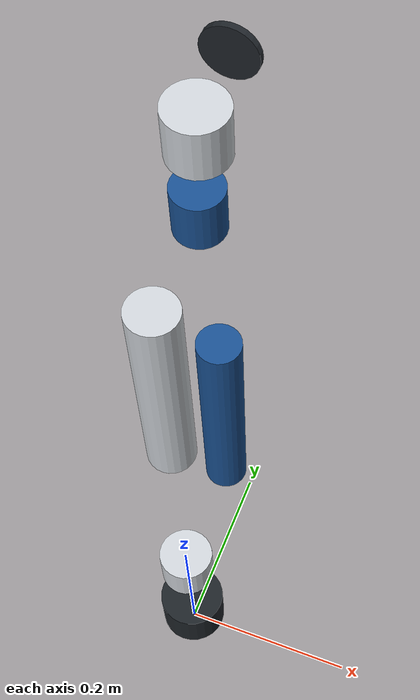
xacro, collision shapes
<?xml version="1.0"?>
<robot xmlns:xacro="http://www.ros.org/wiki/xacro" name="mycobot_pro600">
  <xacro:arg name="use_ros2_control" default="true"/>
  <xacro:arg name="controllers_file" default=""/>
  <xacro:arg name="use_gazebo_meshes" default="false"/>
  <xacro:arg name="fixed_base" default="true"/>

  <material name="pro600_dark">
    <color rgba="0.12 0.14 0.16 1"/>
  </material>
  <material name="pro600_white">
    <color rgba="0.82 0.84 0.86 1"/>
  </material>
  <material name="pro600_blue">
    <color rgba="0.10 0.32 0.58 1"/>
  </material>

  <xacro:if value="$(arg fixed_base)">
    <link name="world"/>
    <joint name="world_to_base" type="fixed">
      <parent link="world"/>
      <child link="base"/>
      <origin xyz="0 0 0" rpy="0 0 0"/>
    </joint>
  </xacro:if>

  <link name="base">
    <visual>
      <geometry>
        <xacro:if value="$(arg use_gazebo_meshes)">
          <mesh filename="package://mycobot_pro600_description/meshes/gazebo/base.stl"/>
        </xacro:if>
        <xacro:unless value="$(arg use_gazebo_meshes)">
          <mesh filename="package://mycobot_pro600_description/vendor_ros1/mycobot_description/urdf/mycobot_pro_600/base.dae"/>
        </xacro:unless>
      </geometry>
      <material name="pro600_dark"/>
      <origin xyz="0 0 0" rpy="0 0 0"/>
    </visual>
    <collision>
      <origin xyz="0 0 0.04" rpy="0 0 1.5708"/>
      <geometry>
        <cylinder length="0.06" radius="0.038"/>
      </geometry>
    </collision>
    <inertial>
      <mass value="0.1"/>
      <origin xyz="0 0 0" rpy="0 0 0"/>
      <inertia ixx="0.03" iyy="0.03" izz="0.03" ixy="0.0" ixz="0.0" iyz="0.0"/>
    </inertial>
  </link>

  <link name="link1">
    <visual>
      <geometry>
        <xacro:if value="$(arg use_gazebo_meshes)">
          <mesh filename="package://mycobot_pro600_description/meshes/gazebo/link1.stl"/>
        </xacro:if>
        <xacro:unless value="$(arg use_gazebo_meshes)">
          <mesh filename="package://mycobot_pro600_description/vendor_ros1/mycobot_description/urdf/mycobot_pro_600/link1.dae"/>
        </xacro:unless>
      </geometry>
      <material name="pro600_white"/>
      <origin xyz="0 0 0" rpy="0 0 3.1415926"/>
    </visual>
    <collision>
      <origin xyz="0.0 0.0 -0.02" rpy="0 0 1.5708"/>
      <geometry>
        <cylinder length="0.05" radius="0.03"/>
      </geometry>
    </collision>
    <inertial>
      <mass value="0.1"/>
      <origin xyz="0 0 0" rpy="0 0 0"/>
      <inertia ixx="0.03" iyy="0.03" izz="0.03" ixy="0.0" ixz="0.0" iyz="0.0"/>
    </inertial>
  </link>

  <link name="link2">
    <visual>
      <geometry>
        <xacro:if value="$(arg use_gazebo_meshes)">
          <mesh filename="package://mycobot_pro600_description/meshes/gazebo/link2.stl"/>
        </xacro:if>
        <xacro:unless value="$(arg use_gazebo_meshes)">
          <mesh filename="package://mycobot_pro600_description/vendor_ros1/mycobot_description/urdf/mycobot_pro_600/link2.dae"/>
        </xacro:unless>
      </geometry>
      <material name="pro600_blue"/>
      <origin xyz="0 0 -0.080" rpy="3.1415926 0 3.1415926"/>
    </visual>
    <collision>
      <origin xyz="0.128 0 -0.125" rpy="0 1.5708 0"/>
      <geometry>
        <cylinder length="0.28" radius="0.024"/>
      </geometry>
    </collision>
    <inertial>
      <mass value="0.1"/>
      <origin xyz="0 0 0" rpy="0 0 0"/>
      <inertia ixx="0.03" iyy="0.03" izz="0.03" ixy="0.0" ixz="0.0" iyz="0.0"/>
    </inertial>
  </link>

  <link name="link3">
    <visual>
      <geometry>
        <xacro:if value="$(arg use_gazebo_meshes)">
          <mesh filename="package://mycobot_pro600_description/meshes/gazebo/link3.stl"/>
        </xacro:if>
        <xacro:unless value="$(arg use_gazebo_meshes)">
          <mesh filename="package://mycobot_pro600_description/vendor_ros1/mycobot_description/urdf/mycobot_pro_600/link3.dae"/>
        </xacro:unless>
      </geometry>
      <material name="pro600_white"/>
      <origin xyz="0 0 -0.0855" rpy="3.1415926 0 3.1415926"/>
    </visual>
    <collision>
      <origin xyz="0.128 0.0 -0.003" rpy="0 1.5708 0"/>
      <geometry>
        <cylinder length="0.24" radius="0.024"/>
      </geometry>
    </collision>
    <inertial>
      <mass value="0.1"/>
      <origin xyz="0 0 0" rpy="0 0 0"/>
      <inertia ixx="0.03" iyy="0.03" izz="0.03" ixy="0.0" ixz="0.0" iyz="0.0"/>
    </inertial>
  </link>

  <link name="link4">
    <visual>
      <geometry>
        <xacro:if value="$(arg use_gazebo_meshes)">
          <mesh filename="package://mycobot_pro600_description/meshes/gazebo/link4.stl"/>
        </xacro:if>
        <xacro:unless value="$(arg use_gazebo_meshes)">
          <mesh filename="package://mycobot_pro600_description/vendor_ros1/mycobot_description/urdf/mycobot_pro_600/link4.dae"/>
        </xacro:unless>
      </geometry>
      <material name="pro600_blue"/>
      <origin xyz="0 0 0" rpy="0 3.1415926 0"/>
    </visual>
    <collision>
      <origin xyz="0.0 -0.01 0.007" rpy="1.5708 1.5708 0"/>
      <geometry>
        <cylinder length="0.05" radius="0.024"/>
      </geometry>
    </collision>
    <inertial>
      <mass value="0.1"/>
      <origin xyz="0 0 0" rpy="0 0 0"/>
      <inertia ixx="0.03" iyy="0.03" izz="0.03" ixy="0.0" ixz="0.0" iyz="0.0"/>
    </inertial>
  </link>

  <link name="link5">
    <visual>
      <geometry>
        <xacro:if value="$(arg use_gazebo_meshes)">
          <mesh filename="package://mycobot_pro600_description/meshes/gazebo/link5.stl"/>
        </xacro:if>
        <xacro:unless value="$(arg use_gazebo_meshes)">
          <mesh filename="package://mycobot_pro600_description/vendor_ros1/mycobot_description/urdf/mycobot_pro_600/link5.dae"/>
        </xacro:unless>
      </geometry>
      <material name="pro600_white"/>
      <origin xyz="0 0 0" rpy="0 0 1.5707"/>
    </visual>
    <collision>
      <origin xyz="0.0 0.0 -0.015" rpy="0 0 -1.5708"/>
      <geometry>
        <cylinder length="0.05" radius="0.028"/>
      </geometry>
    </collision>
    <inertial>
      <mass value="0.1"/>
      <origin xyz="0 0 0" rpy="0 0 0"/>
      <inertia ixx="0.03" iyy="0.03" izz="0.03" ixy="0.0" ixz="0.0" iyz="0.0"/>
    </inertial>
  </link>

  <link name="link6">
    <visual>
      <geometry>
        <xacro:if value="$(arg use_gazebo_meshes)">
          <mesh filename="package://mycobot_pro600_description/meshes/gazebo/link6.stl"/>
        </xacro:if>
        <xacro:unless value="$(arg use_gazebo_meshes)">
          <mesh filename="package://mycobot_pro600_description/vendor_ros1/mycobot_description/urdf/mycobot_pro_600/link6.dae"/>
        </xacro:unless>
      </geometry>
      <material name="pro600_dark"/>
      <origin xyz="0.03 0 0" rpy="0 -1.5707 0"/>
    </visual>
    <collision>
      <origin xyz="0.006 0.0 -0.0" rpy="0 1.5708 0"/>
      <geometry>
        <cylinder length="0.006" radius="0.026"/>
      </geometry>
    </collision>
    <inertial>
      <mass value="0.1"/>
      <origin xyz="0 0 0" rpy="0 0 0"/>
      <inertia ixx="0.03" iyy="0.03" izz="0.03" ixy="0.0" ixz="0.0" iyz="0.0"/>
    </inertial>
  </link>

  <joint name="joint2_to_joint1" type="revolute">
    <axis xyz="0 0 1"/>
    <limit effort="1000.0" lower="-3.14" upper="3.14159" velocity="2.0"/>
    <parent link="base"/>
    <child link="link1"/>
    <origin xyz="0 0 0.19934" rpy="0 0 0"/>
  </joint>

  <joint name="joint3_to_joint2" type="revolute">
    <axis xyz="0 0 -1"/>
    <limit effort="1000.0" lower="-3.14159" upper="3.14159" velocity="2.0"/>
    <parent link="link1"/>
    <child link="link2"/>
    <origin xyz="0 0 0" rpy="1.5708 -1.5708 0"/>
  </joint>

  <joint name="joint4_to_joint3" type="revolute">
    <axis xyz="0 0 -1"/>
    <limit effort="1000.0" lower="-2.61" upper="2.618" velocity="2.0"/>
    <parent link="link2"/>
    <child link="link3"/>
    <origin xyz="0.25 0 0" rpy="0 0 0"/>
  </joint>

  <joint name="joint5_to_joint4" type="revolute">
    <axis xyz="0 0 -1"/>
    <limit effort="1000.0" lower="-2.9670" upper="2.9670" velocity="2.0"/>
    <parent link="link3"/>
    <child link="link4"/>
    <origin xyz="0.25 0 -0.1091" rpy="0 0 1.5708"/>
  </joint>

  <joint name="joint6_to_joint5" type="revolute">
    <axis xyz="0 0 1"/>
    <limit effort="1000.0" lower="-2.93" upper="2.9321" velocity="2.0"/>
    <parent link="link4"/>
    <child link="link5"/>
    <origin xyz="0 -0.108 0" rpy="1.57080 -1.57080 0"/>
  </joint>

  <joint name="joint6output_to_joint6" type="revolute">
    <axis xyz="-1 0 0"/>
    <limit effort="1000.0" lower="-3.03" upper="3.0368" velocity="2.0"/>
    <parent link="link5"/>
    <child link="link6"/>
    <origin xyz="-0.07586 0 0" rpy="-1.57080 0 0"/>
  </joint>

  <xacro:if value="$(arg use_ros2_control)">
    <ros2_control name="GazeboSimSystem" type="system">
      <hardware>
        <plugin>gz_ros2_control/GazeboSimSystem</plugin>
      </hardware>
      <joint name="joint2_to_joint1">
        <command_interface name="position"/>
        <state_interface name="position"/>
        <state_interface name="velocity"/>
      </joint>
      <joint name="joint3_to_joint2">
        <command_interface name="position"/>
        <state_interface name="position"/>
        <state_interface name="velocity"/>
      </joint>
      <joint name="joint4_to_joint3">
        <command_interface name="position"/>
        <state_interface name="position"/>
        <state_interface name="velocity"/>
      </joint>
      <joint name="joint5_to_joint4">
        <command_interface name="position"/>
        <state_interface name="position"/>
        <state_interface name="velocity"/>
      </joint>
      <joint name="joint6_to_joint5">
        <command_interface name="position"/>
        <state_interface name="position"/>
        <state_interface name="velocity"/>
      </joint>
      <joint name="joint6output_to_joint6">
        <command_interface name="position"/>
        <state_interface name="position"/>
        <state_interface name="velocity"/>
      </joint>
    </ros2_control>

    <gazebo>
      <plugin filename="libgz_ros2_control-system.so" name="gz_ros2_control::GazeboSimROS2ControlPlugin">
        <parameters>$(arg controllers_file)</parameters>
      </plugin>
    </gazebo>
  </xacro:if>
</robot>
